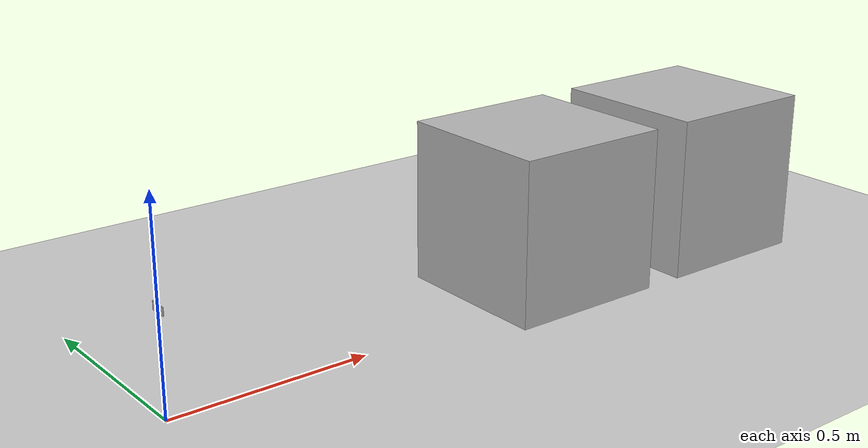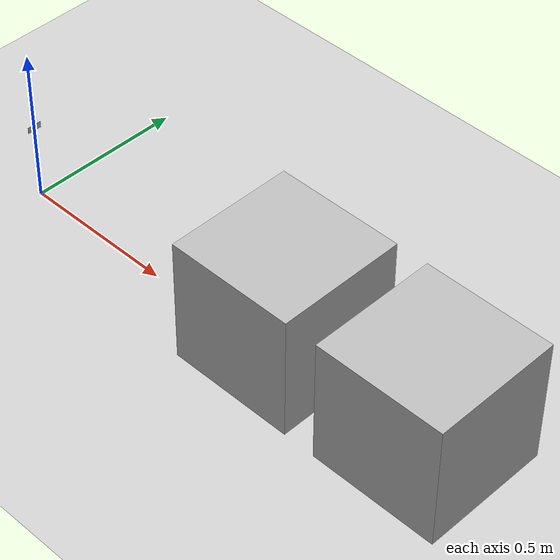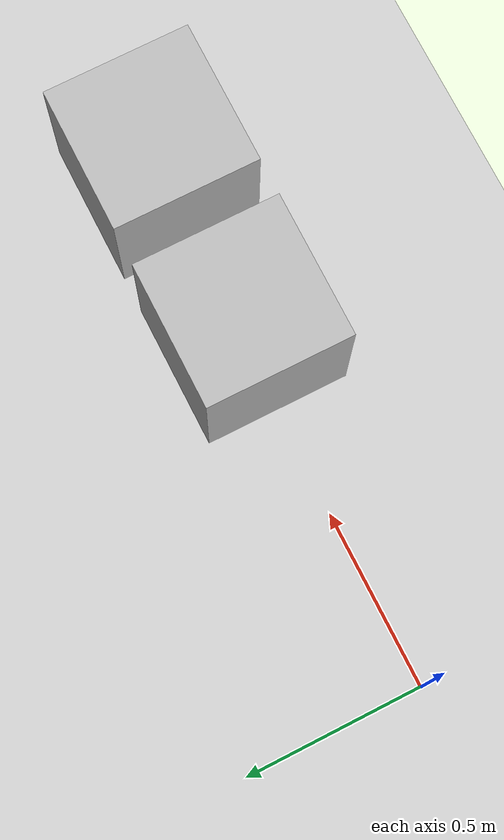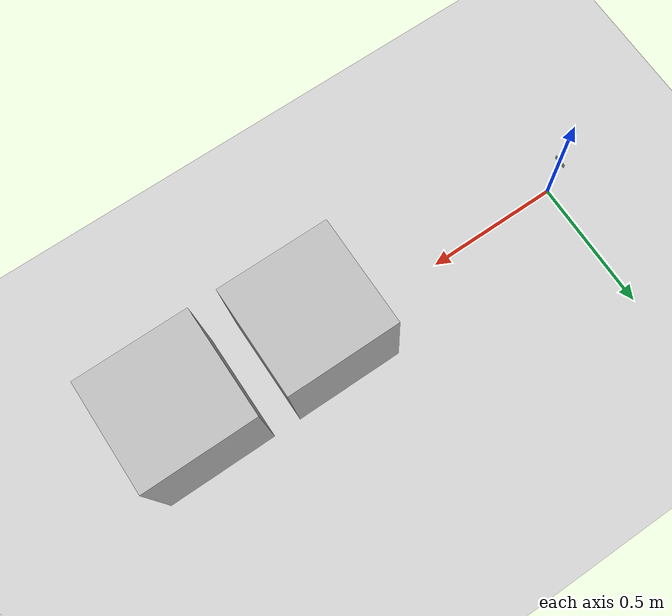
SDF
<?xml version="1.0" ?>
<sdf version="1.5">
    <world name="default">
        <include>
            <uri>model://ground_plane</uri>
        </include>

        <include>
            <uri>model://sun</uri>
        </include>

        <include>
            <uri>model://hcsr04</uri>
            <name>hcsr04</name>
            <pose>0 0 0.25 0 0 0</pose>
        </include>

        <model name="square_model_1">
            <pose>1.5 0 0.25 0 0 0</pose>
            <static>false</static>
            <link name="link">
                <collision name="square_model_collision">
                    <geometry>
                        <box>
                            <size>0.4 0.4 0.4</size>
                        </box>
                    </geometry>
                </collision>
                <visual name="square_model_visual">
                    <geometry>
                        <box>
                            <size>0.4 0.4 0.4</size>
                        </box>
                    </geometry>
                </visual>
            </link>
        </model>

        <model name="square_model_2">
            <pose>1.0 0 0.25 0 0 0</pose>
            <static>false</static>
            <link name="link">
                <collision name="square_model_collision">
                    <geometry>
                        <box>
                            <size>0.4 0.4 0.4</size>
                        </box>
                    </geometry>
                </collision>
                <visual name="square_model_visual">
                    <geometry>
                        <box>
                            <size>0.4 0.4 0.4</size>
                        </box>
                    </geometry>
                </visual>
            </link>
        </model>

        <physics type='ode'>
            <max_step_size>0.02</max_step_size>
            <real_time_factor>1</real_time_factor>
            <real_time_update_rate>50</real_time_update_rate>
            <gravity>0 0 -9.8</gravity>
        </physics>
    </world>
</sdf>

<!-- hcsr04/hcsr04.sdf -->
<sdf version="1.5">
    <model name="hcsr04">
        <pose>0 0 0 0 0 0</pose>
        <static>true</static>
        <link name="hcsr04_link">
            <pose>0 0 0 0 0 0</pose>
            <gravity>false</gravity>
            <visual name="hcsr04_visual">
                <geometry>
                    <box>
                        <size>0.0015 0.045 0.02</size>
                    </box>
                </geometry>
            </visual>
            <collision name="hcsr04_collision">
                <geometry>
                    <box>
                        <size>0.0015 0.045 0.02</size>
                    </box>
                </geometry>
            </collision>
            <sensor name="hcsr04-sensor" type="sonar">
                <plugin name="hcsr04_sensor_plugin_plugin" filename="libsim_sonar_plugin.so">
                    <fov>0.05</fov>
                    <robotNamespace></robotNamespace>
                    <frameName>/hcsr04</frameName>
                    <topicName>/sensor/sonar</topicName>
                </plugin>
                <pose>0 0 0 0 -1.5707 0</pose>
                <sonar>
                    <min>0.02</min>
                    <max>2.00</max>
                    <radius>0.02</radius>
                </sonar>
                <always_on>1</always_on>
                <update_rate>30</update_rate>
                <visualize>true</visualize>
            </sensor>
        </link>

    </model>
</sdf>
